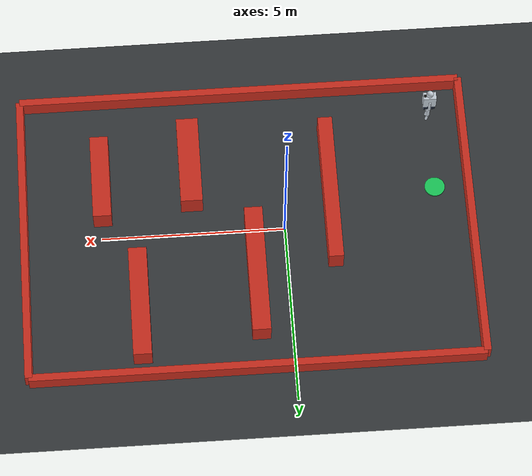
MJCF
<mujoco model="g1_kinematic_nav">
  <compiler angle="radian"/>
  <option timestep="0.02" gravity="0 0 -9.81"/>
  <visual>
    <global azimuth="130" elevation="-35"/>
    <headlight ambient="0.55 0.55 0.55" diffuse="0.35 0.35 0.35" specular="0.03 0.03 0.03"/>
  </visual>
  <asset>
    <texture name="grid" type="2d" builtin="checker" rgb1="0.18 0.19 0.20" rgb2="0.24 0.25 0.26" width="512" height="512"/>
    <material name="floor_mat" texture="grid" texrepeat="4 4" reflectance="0.1"/>
    <material name="robot_mat" rgba="0.78 0.82 0.86 1"/>
    <material name="joint_mat" rgba="0.08 0.12 0.18 1"/>
    <material name="obstacle_mat" rgba="0.8 0.18 0.12 1"/>
    <material name="goal_mat" rgba="0.1 0.8 0.35 1"/>
  </asset>
  <worldbody>
    <light name="soft_top_light" directional="true" pos="0 0 8" dir="0 0 -1" ambient="0.35 0.35 0.35" diffuse="0.45 0.45 0.45" specular="0.02 0.02 0.02"/>
    <light name="soft_front_light" directional="true" pos="0 -5 6" dir="0 0.45 -1" ambient="0.18 0.18 0.18" diffuse="0.28 0.28 0.28" specular="0.01 0.01 0.01"/>
    <camera name="nav_overview" pos="1 -8 7" xyaxes="1 0 0 0 0.65 0.76"/>
    <geom name="floor" type="plane" size="8 6 0.05" material="floor_mat"/>

    <geom name="wall_w" type="box" pos="-5.1 0 0.25" size="0.1 4.1 0.25" material="obstacle_mat"/>
    <geom name="wall_e" type="box" pos="7.1 0 0.25" size="0.1 4.1 0.25" material="obstacle_mat"/>
    <geom name="wall_s" type="box" pos="1 -4.1 0.25" size="6.1 0.1 0.25" material="obstacle_mat"/>
    <geom name="wall_n" type="box" pos="1 4.1 0.25" size="6.1 0.1 0.25" material="obstacle_mat"/>
    <geom name="obs_0" type="box" pos="-1.3 -0.9 0.35" size="0.2 2.1 0.35" material="obstacle_mat"/>
    <geom name="obs_1" type="box" pos="0.85 1.4 0.35" size="0.25 1.8 0.35" material="obstacle_mat"/>
    <geom name="obs_2" type="box" pos="2.5 -1.95 0.35" size="0.3 1.25 0.35" material="obstacle_mat"/>
    <geom name="obs_3" type="box" pos="4.05 2.15 0.35" size="0.25 1.55 0.35" material="obstacle_mat"/>
    <geom name="obs_4" type="box" pos="4.95 -1.6 0.35" size="0.25 1.2 0.35" material="obstacle_mat"/>
    <!-- Runtime updates this marker from config/navigation.json; this pos is only a fallback. -->
    <geom name="goal" type="cylinder" pos="-4.2 -1.0 0.02" size="0.28 0.02" material="goal_mat"/>

    <body name="g1_base" pos="-4.2 -3.2 0.72">
      <freejoint name="root"/>
      <geom name="pelvis" type="box" pos="0 0 0" size="0.16 0.10 0.10" material="joint_mat"/>
      <geom name="torso" type="box" pos="0 0 0.28" size="0.18 0.11 0.22" material="robot_mat"/>
      <geom name="head" type="sphere" pos="0 0 0.58" size="0.10" material="robot_mat"/>
      <geom name="lidar" type="cylinder" pos="0.12 0 0.48" size="0.045 0.025" rgba="0.05 0.05 0.05 1"/>

      <body name="left_arm" pos="0 0.16 0.34">
        <geom type="capsule" fromto="0 0 0 0 0 -0.35" size="0.035" material="robot_mat"/>
        <geom type="capsule" fromto="0 0 -0.35 0 0 -0.65" size="0.03" material="robot_mat"/>
      </body>
      <body name="right_arm" pos="0 -0.16 0.34">
        <geom type="capsule" fromto="0 0 0 0 0 -0.35" size="0.035" material="robot_mat"/>
        <geom type="capsule" fromto="0 0 -0.35 0 0 -0.65" size="0.03" material="robot_mat"/>
      </body>
      <body name="left_leg" pos="0 0.07 -0.09">
        <geom type="capsule" fromto="0 0 0 0 0 -0.42" size="0.045" material="robot_mat"/>
        <geom type="capsule" fromto="0 0 -0.42 0.06 0 -0.82" size="0.04" material="robot_mat"/>
        <geom type="box" pos="0.11 0 -0.86" size="0.13 0.055 0.025" material="joint_mat"/>
      </body>
      <body name="right_leg" pos="0 -0.07 -0.09">
        <geom type="capsule" fromto="0 0 0 0 0 -0.42" size="0.045" material="robot_mat"/>
        <geom type="capsule" fromto="0 0 -0.42 0.06 0 -0.82" size="0.04" material="robot_mat"/>
        <geom type="box" pos="0.11 0 -0.86" size="0.13 0.055 0.025" material="joint_mat"/>
      </body>
    </body>
  </worldbody>
</mujoco>
